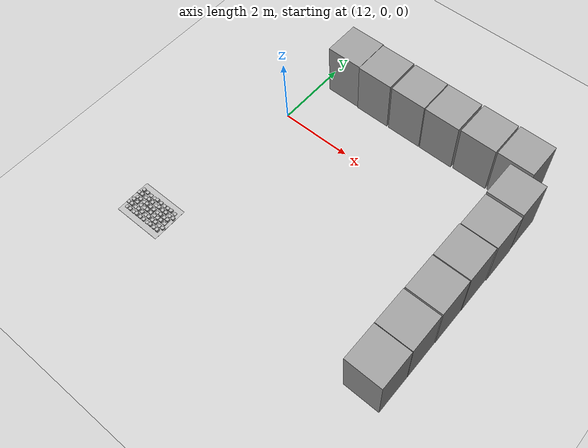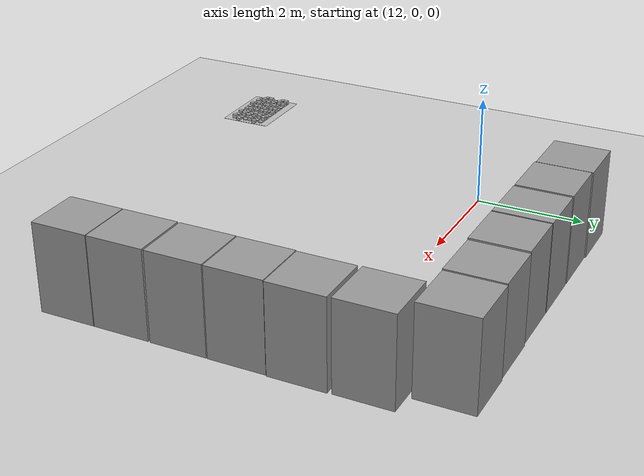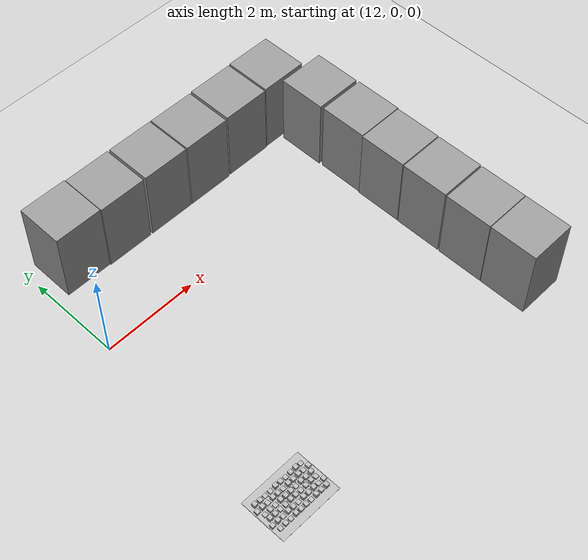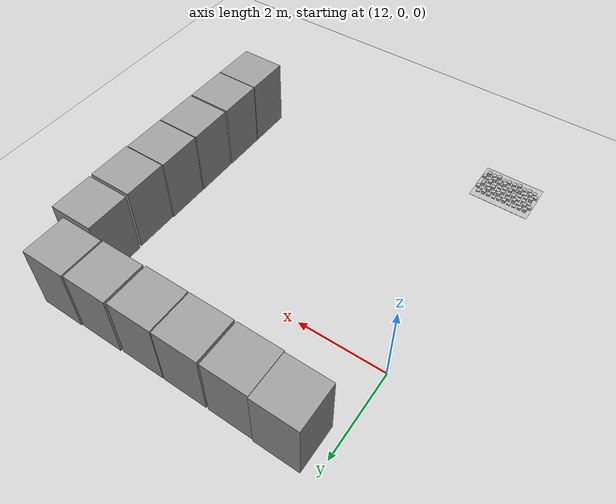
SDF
<sdf version="1.6">
 <world name="default">
  <model name="ground_plane">
   <static>1</static>
   <link name="link">
    <collision name="collision">
     <geometry><plane><normal>0 0 1</normal><size>100 100</size></plane></geometry>
     <surface><friction><ode><mu>100</mu><mu2>50</mu2></ode></friction></surface>
    </collision>
    <visual name="visual">
     <cast_shadows>0</cast_shadows>
     <geometry><plane><normal>0 0 1</normal><size>100 100</size></plane></geometry>
     <material>
      <script><uri>file://media/materials/scripts/gazebo.material</uri><name>Gazebo/Grey</name></script>
     </material>
    </visual>
   </link>
  </model>
  <model name="frc2016_roughterrain_clone_2_clone_clone_1">
   <static>1</static>
   <link name="link">
    <visual name="platform">
     <pose>0 0 0.08269 0 -0 0</pose>
     <geometry><box><size>1.27 0.5969 0.003175</size></box></geometry>
    </visual>
    <collision name="platform">
     <pose>0 0 0.08269 0 -0 0</pose>
     <geometry><box><size>1.27 0.5969 0.003175</size></box></geometry>
    </collision>
    <visual name="row1_block1_sm">
     <pose>0.51435 0.1143 0.09698 0 -0 0</pose>
     <geometry><box><size>0.0762 0.0762 0.0254</size></box></geometry>
    </visual>
    <collision name="row1_block1_sm">
     <pose>0.51435 0.1143 0.09698 0 -0 0</pose>
     <geometry><box><size>0.0762 0.0762 0.0254</size></box></geometry>
    </collision>
    <visual name="row1_block2_lg">
     <pose>0.40005 0.1143 0.12238 0 -0 0</pose>
     <geometry><box><size>0.0762 0.0762 0.0762</size></box></geometry>
    </visual>
    <collision name="row1_block2_lg">
     <pose>0.40005 0.1143 0.12238 0 -0 0</pose>
     <geometry><box><size>0.0762 0.0762 0.0762</size></box></geometry>
    </collision>
    <visual name="row1_block3_md">
     <pose>0.28575 0.1143 0.10968 0 -0 0</pose>
     <geometry><box><size>0.0762 0.0762 0.0508</size></box></geometry>
    </visual>
    <collision name="row1_block3_md">
     <pose>0.28575 0.1143 0.10968 0 -0 0</pose>
     <geometry><box><size>0.0762 0.0762 0.0508</size></box></geometry>
    </collision>
    <visual name="row1_block4_sm">
     <pose>0.17145 0.1143 0.09698 0 -0 0</pose>
     <geometry><box><size>0.0762 0.0762 0.0254</size></box></geometry>
    </visual>
    <collision name="row1_block4_sm">
     <pose>0.17145 0.1143 0.09698 0 -0 0</pose>
     <geometry><box><size>0.0762 0.0762 0.0254</size></box></geometry>
    </collision>
    <visual name="row1_block5_md">
     <pose>0.05715 0.1143 0.10968 0 -0 0</pose>
     <geometry><box><size>0.0762 0.0762 0.0508</size></box></geometry>
    </visual>
    <collision name="row1_block5_md">
     <pose>0.05715 0.1143 0.10968 0 -0 0</pose>
     <geometry><box><size>0.0762 0.0762 0.0508</size></box></geometry>
    </collision>
    <visual name="row1_block6_lg">
     <pose>-0.05715 0.1143 0.12238 0 -0 0</pose>
     <geometry><box><size>0.0762 0.0762 0.0762</size></box></geometry>
    </visual>
    <collision name="row1_block6_lg">
     <pose>-0.05715 0.1143 0.12238 0 -0 0</pose>
     <geometry><box><size>0.0762 0.0762 0.0762</size></box></geometry>
    </collision>
    <visual name="row1_block7_sm">
     <pose>-0.17145 0.1143 0.09698 0 -0 0</pose>
     <geometry><box><size>0.0762 0.0762 0.0254</size></box></geometry>
    </visual>
    <collision name="row1_block7_sm">
     <pose>-0.17145 0.1143 0.09698 0 -0 0</pose>
     <geometry><box><size>0.0762 0.0762 0.0254</size></box></geometry>
    </collision>
    <visual name="row1_block8_sm">
     <pose>-0.28575 0.1143 0.09698 0 -0 0</pose>
     <geometry><box><size>0.0762 0.0762 0.0254</size></box></geometry>
    </visual>
    <collision name="row1_block8_sm">
     <pose>-0.28575 0.1143 0.09698 0 -0 0</pose>
     <geometry><box><size>0.0762 0.0762 0.0254</size></box></geometry>
    </collision>
    <visual name="row1_block9_md">
     <pose>-0.40005 0.1143 0.10968 0 -0 0</pose>
     <geometry><box><size>0.0762 0.0762 0.0508</size></box></geometry>
    </visual>
    <collision name="row1_block9_md">
     <pose>-0.40005 0.1143 0.10968 0 -0 0</pose>
     <geometry><box><size>0.0762 0.0762 0.0508</size></box></geometry>
    </collision>
    <visual name="row1_block10_lg">
     <pose>-0.51435 0.1143 0.12238 0 -0 0</pose>
     <geometry><box><size>0.0762 0.0762 0.0762</size></box></geometry>
    </visual>
    <collision name="row1_block10_lg">
     <pose>-0.51435 0.1143 0.12238 0 -0 0</pose>
     <geometry><box><size>0.0762 0.0762 0.0762</size></box></geometry>
    </collision>
    <visual name="row2_block1_md">
     <pose>0.5715 0 0.10968 0 -0 0</pose>
     <geometry><box><size>0.0762 0.0762 0.0508</size></box></geometry>
    </visual>
    <collision name="row2_block1_md">
     <pose>0.5715 0 0.10968 0 -0 0</pose>
     <geometry><box><size>0.0762 0.0762 0.0508</size></box></geometry>
    </collision>
    <visual name="row2_block2_sm">
     <pose>0.4572 0 0.09698 0 -0 0</pose>
     <geometry><box><size>0.0762 0.0762 0.0254</size></box></geometry>
    </visual>
    <collision name="row2_block2_sm">
     <pose>0.4572 0 0.09698 0 -0 0</pose>
     <geometry><box><size>0.0762 0.0762 0.0254</size></box></geometry>
    </collision>
    <visual name="row2_block3_lg">
     <pose>0.3429 0 0.12238 0 -0 0</pose>
     <geometry><box><size>0.0762 0.0762 0.0762</size></box></geometry>
    </visual>
    <collision name="row2_block3_lg">
     <pose>0.3429 0 0.12238 0 -0 0</pose>
     <geometry><box><size>0.0762 0.0762 0.0762</size></box></geometry>
    </collision>
    <visual name="row2_block4_md">
     <pose>0.2286 0 0.10968 0 -0 0</pose>
     <geometry><box><size>0.0762 0.0762 0.0508</size></box></geometry>
    </visual>
    <collision name="row2_block4_md">
     <pose>0.2286 0 0.10968 0 -0 0</pose>
     <geometry><box><size>0.0762 0.0762 0.0508</size></box></geometry>
    </collision>
    <visual name="row2_block5_lg">
     <pose>0.1143 0 0.12238 0 -0 0</pose>
     <geometry><box><size>0.0762 0.0762 0.0762</size></box></geometry>
    </visual>
    <collision name="row2_block5_lg">
     <pose>0.1143 0 0.12238 0 -0 0</pose>
     <geometry><box><size>0.0762 0.0762 0.0762</size></box></geometry>
    </collision>
    <visual name="row2_block6_sm">
     <pose>0 0 0.09698 0 -0 0</pose>
     <geometry><box><size>0.0762 0.0762 0.0254</size></box></geometry>
    </visual>
    <collision name="row2_block6_sm">
     <pose>0 0 0.09698 0 -0 0</pose>
     <geometry><box><size>0.0762 0.0762 0.0254</size></box></geometry>
    </collision>
    <visual name="row2_block7_md">
     <pose>-0.1143 0 0.10968 0 -0 0</pose>
     <geometry><box><size>0.0762 0.0762 0.0508</size></box></geometry>
    </visual>
    <collision name="row2_block7_md">
     <pose>-0.1143 0 0.10968 0 -0 0</pose>
     <geometry><box><size>0.0762 0.0762 0.0508</size></box></geometry>
    </collision>
    <visual name="row2_block8_lg">
     <pose>-0.2286 0 0.12238 0 -0 0</pose>
     <geometry><box><size>0.0762 0.0762 0.0762</size></box></geometry>
    </visual>
    <collision name="row2_block8_lg">
     <pose>-0.2286 0 0.12238 0 -0 0</pose>
     <geometry><box><size>0.0762 0.0762 0.0762</size></box></geometry>
    </collision>
    <visual name="row2_block9_sm">
     <pose>-0.3429 0 0.09698 0 -0 0</pose>
     <geometry><box><size>0.0762 0.0762 0.0254</size></box></geometry>
    </visual>
    <collision name="row2_block9_sm">
     <pose>-0.3429 0 0.09698 0 -0 0</pose>
     <geometry><box><size>0.0762 0.0762 0.0254</size></box></geometry>
    </collision>
    <visual name="row2_block10_lg">
     <pose>-0.4572 0 0.12238 0 -0 0</pose>
     <geometry><box><size>0.0762 0.0762 0.0762</size></box></geometry>
    </visual>
    <collision name="row2_block10_lg">
     <pose>-0.4572 0 0.12238 0 -0 0</pose>
     <geometry><box><size>0.0762 0.0762 0.0762</size></box></geometry>
    </collision>
    <visual name="row2_block11_md">
     <pose>-0.5715 0 0.10968 0 -0 0</pose>
     <geometry><box><size>0.0762 0.0762 0.0508</size></box></geometry>
    </visual>
    <collision name="row2_block11_md">
     <pose>-0.5715 0 0.10968 0 -0 0</pose>
     <geometry><box><size>0.0762 0.0762 0.0508</size></box></geometry>
    </collision>
    <visual name="row3_block1_lg">
     <pose>0.51435 -0.1143 0.12238 0 -0 0</pose>
     <geometry><box><size>0.0762 0.0762 0.0762</size></box></geometry>
    </visual>
    <collision name="row3_block1_lg">
     <pose>0.51435 -0.1143 0.12238 0 -0 0</pose>
     <geometry><box><size>0.0762 0.0762 0.0762</size></box></geometry>
    </collision>
    <visual name="row3_block2_md">
     <pose>0.40005 -0.1143 0.10968 0 -0 0</pose>
     <geometry><box><size>0.0762 0.0762 0.0508</size></box></geometry>
    </visual>
    <collision name="row3_block2_md">
     <pose>0.40005 -0.1143 0.10968 0 -0 0</pose>
     <geometry><box><size>0.0762 0.0762 0.0508</size></box></geometry>
    </collision>
    <visual name="row3_block3_lg">
     <pose>0.28575 -0.1143 0.12238 0 -0 0</pose>
     <geometry><box><size>0.0762 0.0762 0.0762</size></box></geometry>
    </visual>
    <collision name="row3_block3_lg">
     <pose>0.28575 -0.1143 0.12238 0 -0 0</pose>
     <geometry><box><size>0.0762 0.0762 0.0762</size></box></geometry>
    </collision>
    <visual name="row3_block4_sm">
     <pose>0.17145 -0.1143 0.09698 0 -0 0</pose>
     <geometry><box><size>0.0762 0.0762 0.0254</size></box></geometry>
    </visual>
    <collision name="row3_block4_sm">
     <pose>0.17145 -0.1143 0.09698 0 -0 0</pose>
     <geometry><box><size>0.0762 0.0762 0.0254</size></box></geometry>
    </collision>
    <visual name="row3_block5_md">
     <pose>0.05715 -0.1143 0.10968 0 -0 0</pose>
     <geometry><box><size>0.0762 0.0762 0.0508</size></box></geometry>
    </visual>
    <collision name="row3_block5_md">
     <pose>0.05715 -0.1143 0.10968 0 -0 0</pose>
     <geometry><box><size>0.0762 0.0762 0.0508</size></box></geometry>
    </collision>
    <visual name="row3_block6_md">
     <pose>-0.05715 -0.1143 0.10968 0 -0 0</pose>
     <geometry><box><size>0.0762 0.0762 0.0508</size></box></geometry>
    </visual>
    <collision name="row3_block6_md">
     <pose>-0.05715 -0.1143 0.10968 0 -0 0</pose>
     <geometry><box><size>0.0762 0.0762 0.0508</size></box></geometry>
    </collision>
    <visual name="row3_block7_lg">
     <pose>-0.17145 -0.1143 0.12238 0 -0 0</pose>
     <geometry><box><size>0.0762 0.0762 0.0762</size></box></geometry>
    </visual>
    <collision name="row3_block7_lg">
     <pose>-0.17145 -0.1143 0.12238 0 -0 0</pose>
     <geometry><box><size>0.0762 0.0762 0.0762</size></box></geometry>
    </collision>
    <visual name="row3_block8_sm">
     <pose>-0.28575 -0.1143 0.09698 0 -0 0</pose>
     <geometry><box><size>0.0762 0.0762 0.0254</size></box></geometry>
    </visual>
    <collision name="row3_block8_sm">
     <pose>-0.28575 -0.1143 0.09698 0 -0 0</pose>
     <geometry><box><size>0.0762 0.0762 0.0254</size></box></geometry>
    </collision>
    <visual name="row3_block9_md">
     <pose>-0.40005 -0.1143 0.10968 0 -0 0</pose>
     <geometry><box><size>0.0762 0.0762 0.0508</size></box></geometry>
    </visual>
    <collision name="row3_block9_md">
     <pose>-0.40005 -0.1143 0.10968 0 -0 0</pose>
     <geometry><box><size>0.0762 0.0762 0.0508</size></box></geometry>
    </collision>
    <visual name="row3_block10_sm">
     <pose>-0.51435 -0.1143 0.09698 0 -0 0</pose>
     <geometry><box><size>0.0762 0.0762 0.0254</size></box></geometry>
    </visual>
    <collision name="row3_block10_sm">
     <pose>-0.51435 -0.1143 0.09698 0 -0 0</pose>
     <geometry><box><size>0.0762 0.0762 0.0254</size></box></geometry>
    </collision>
   </link>
   <pose>11.8816 -4.48704 0.826533 0 -0 0</pose>
  </model>
  <model name="frc2016_roughterrain_clone_2_clone_clone_2">
   <static>1</static>
   <link name="link">
    <visual name="platform">
     <pose>0 0 0.08269 0 -0 0</pose>
     <geometry><box><size>1.27 0.5969 0.003175</size></box></geometry>
    </visual>
    <collision name="platform">
     <pose>0 0 0.08269 0 -0 0</pose>
     <geometry><box><size>1.27 0.5969 0.003175</size></box></geometry>
    </collision>
    <visual name="row1_block1_sm">
     <pose>0.51435 0.1143 0.09698 0 -0 0</pose>
     <geometry><box><size>0.0762 0.0762 0.0254</size></box></geometry>
    </visual>
    <collision name="row1_block1_sm">
     <pose>0.51435 0.1143 0.09698 0 -0 0</pose>
     <geometry><box><size>0.0762 0.0762 0.0254</size></box></geometry>
    </collision>
    <visual name="row1_block2_lg">
     <pose>0.40005 0.1143 0.12238 0 -0 0</pose>
     <geometry><box><size>0.0762 0.0762 0.0762</size></box></geometry>
    </visual>
    <collision name="row1_block2_lg">
     <pose>0.40005 0.1143 0.12238 0 -0 0</pose>
     <geometry><box><size>0.0762 0.0762 0.0762</size></box></geometry>
    </collision>
    <visual name="row1_block3_md">
     <pose>0.28575 0.1143 0.10968 0 -0 0</pose>
     <geometry><box><size>0.0762 0.0762 0.0508</size></box></geometry>
    </visual>
    <collision name="row1_block3_md">
     <pose>0.28575 0.1143 0.10968 0 -0 0</pose>
     <geometry><box><size>0.0762 0.0762 0.0508</size></box></geometry>
    </collision>
    <visual name="row1_block4_sm">
     <pose>0.17145 0.1143 0.09698 0 -0 0</pose>
     <geometry><box><size>0.0762 0.0762 0.0254</size></box></geometry>
    </visual>
    <collision name="row1_block4_sm">
     <pose>0.17145 0.1143 0.09698 0 -0 0</pose>
     <geometry><box><size>0.0762 0.0762 0.0254</size></box></geometry>
    </collision>
    <visual name="row1_block5_md">
     <pose>0.05715 0.1143 0.10968 0 -0 0</pose>
     <geometry><box><size>0.0762 0.0762 0.0508</size></box></geometry>
    </visual>
    <collision name="row1_block5_md">
     <pose>0.05715 0.1143 0.10968 0 -0 0</pose>
     <geometry><box><size>0.0762 0.0762 0.0508</size></box></geometry>
    </collision>
    <visual name="row1_block6_lg">
     <pose>-0.05715 0.1143 0.12238 0 -0 0</pose>
     <geometry><box><size>0.0762 0.0762 0.0762</size></box></geometry>
    </visual>
    <collision name="row1_block6_lg">
     <pose>-0.05715 0.1143 0.12238 0 -0 0</pose>
     <geometry><box><size>0.0762 0.0762 0.0762</size></box></geometry>
    </collision>
    <visual name="row1_block7_sm">
     <pose>-0.17145 0.1143 0.09698 0 -0 0</pose>
     <geometry><box><size>0.0762 0.0762 0.0254</size></box></geometry>
    </visual>
    <collision name="row1_block7_sm">
     <pose>-0.17145 0.1143 0.09698 0 -0 0</pose>
     <geometry><box><size>0.0762 0.0762 0.0254</size></box></geometry>
    </collision>
    <visual name="row1_block8_sm">
     <pose>-0.28575 0.1143 0.09698 0 -0 0</pose>
     <geometry><box><size>0.0762 0.0762 0.0254</size></box></geometry>
    </visual>
    <collision name="row1_block8_sm">
     <pose>-0.28575 0.1143 0.09698 0 -0 0</pose>
     <geometry><box><size>0.0762 0.0762 0.0254</size></box></geometry>
    </collision>
    <visual name="row1_block9_md">
     <pose>-0.40005 0.1143 0.10968 0 -0 0</pose>
     <geometry><box><size>0.0762 0.0762 0.0508</size></box></geometry>
    </visual>
    <collision name="row1_block9_md">
     <pose>-0.40005 0.1143 0.10968 0 -0 0</pose>
     <geometry><box><size>0.0762 0.0762 0.0508</size></box></geometry>
    </collision>
    <visual name="row1_block10_lg">
     <pose>-0.51435 0.1143 0.12238 0 -0 0</pose>
     <geometry><box><size>0.0762 0.0762 0.0762</size></box></geometry>
    </visual>
    <collision name="row1_block10_lg">
     <pose>-0.51435 0.1143 0.12238 0 -0 0</pose>
     <geometry><box><size>0.0762 0.0762 0.0762</size></box></geometry>
    </collision>
    <visual name="row2_block1_md">
     <pose>0.5715 0 0.10968 0 -0 0</pose>
     <geometry><box><size>0.0762 0.0762 0.0508</size></box></geometry>
    </visual>
    <collision name="row2_block1_md">
     <pose>0.5715 0 0.10968 0 -0 0</pose>
     <geometry><box><size>0.0762 0.0762 0.0508</size></box></geometry>
    </collision>
    <visual name="row2_block2_sm">
     <pose>0.4572 0 0.09698 0 -0 0</pose>
     <geometry><box><size>0.0762 0.0762 0.0254</size></box></geometry>
    </visual>
    <collision name="row2_block2_sm">
     <pose>0.4572 0 0.09698 0 -0 0</pose>
     <geometry><box><size>0.0762 0.0762 0.0254</size></box></geometry>
    </collision>
    <visual name="row2_block3_lg">
     <pose>0.3429 0 0.12238 0 -0 0</pose>
     <geometry><box><size>0.0762 0.0762 0.0762</size></box></geometry>
    </visual>
    <collision name="row2_block3_lg">
     <pose>0.3429 0 0.12238 0 -0 0</pose>
     <geometry><box><size>0.0762 0.0762 0.0762</size></box></geometry>
    </collision>
    <visual name="row2_block4_md">
     <pose>0.2286 0 0.10968 0 -0 0</pose>
     <geometry><box><size>0.0762 0.0762 0.0508</size></box></geometry>
    </visual>
    <collision name="row2_block4_md">
     <pose>0.2286 0 0.10968 0 -0 0</pose>
     <geometry><box><size>0.0762 0.0762 0.0508</size></box></geometry>
    </collision>
    <visual name="row2_block5_lg">
     <pose>0.1143 0 0.12238 0 -0 0</pose>
     <geometry><box><size>0.0762 0.0762 0.0762</size></box></geometry>
    </visual>
    <collision name="row2_block5_lg">
     <pose>0.1143 0 0.12238 0 -0 0</pose>
     <geometry><box><size>0.0762 0.0762 0.0762</size></box></geometry>
    </collision>
    <visual name="row2_block6_sm">
     <pose>0 0 0.09698 0 -0 0</pose>
     <geometry><box><size>0.0762 0.0762 0.0254</size></box></geometry>
    </visual>
    <collision name="row2_block6_sm">
     <pose>0 0 0.09698 0 -0 0</pose>
     <geometry><box><size>0.0762 0.0762 0.0254</size></box></geometry>
    </collision>
    <visual name="row2_block7_md">
     <pose>-0.1143 0 0.10968 0 -0 0</pose>
     <geometry><box><size>0.0762 0.0762 0.0508</size></box></geometry>
    </visual>
    <collision name="row2_block7_md">
     <pose>-0.1143 0 0.10968 0 -0 0</pose>
     <geometry><box><size>0.0762 0.0762 0.0508</size></box></geometry>
    </collision>
    <visual name="row2_block8_lg">
     <pose>-0.2286 0 0.12238 0 -0 0</pose>
     <geometry><box><size>0.0762 0.0762 0.0762</size></box></geometry>
    </visual>
    <collision name="row2_block8_lg">
     <pose>-0.2286 0 0.12238 0 -0 0</pose>
     <geometry><box><size>0.0762 0.0762 0.0762</size></box></geometry>
    </collision>
    <visual name="row2_block9_sm">
     <pose>-0.3429 0 0.09698 0 -0 0</pose>
     <geometry><box><size>0.0762 0.0762 0.0254</size></box></geometry>
    </visual>
    <collision name="row2_block9_sm">
     <pose>-0.3429 0 0.09698 0 -0 0</pose>
     <geometry><box><size>0.0762 0.0762 0.0254</size></box></geometry>
    </collision>
    <visual name="row2_block10_lg">
     <pose>-0.4572 0 0.12238 0 -0 0</pose>
     <geometry><box><size>0.0762 0.0762 0.0762</size></box></geometry>
    </visual>
    <collision name="row2_block10_lg">
     <pose>-0.4572 0 0.12238 0 -0 0</pose>
     <geometry><box><size>0.0762 0.0762 0.0762</size></box></geometry>
    </collision>
    <visual name="row2_block11_md">
     <pose>-0.5715 0 0.10968 0 -0 0</pose>
     <geometry><box><size>0.0762 0.0762 0.0508</size></box></geometry>
    </visual>
    <collision name="row2_block11_md">
     <pose>-0.5715 0 0.10968 0 -0 0</pose>
     <geometry><box><size>0.0762 0.0762 0.0508</size></box></geometry>
    </collision>
    <visual name="row3_block1_lg">
     <pose>0.51435 -0.1143 0.12238 0 -0 0</pose>
     <geometry><box><size>0.0762 0.0762 0.0762</size></box></geometry>
    </visual>
    <collision name="row3_block1_lg">
     <pose>0.51435 -0.1143 0.12238 0 -0 0</pose>
     <geometry><box><size>0.0762 0.0762 0.0762</size></box></geometry>
    </collision>
    <visual name="row3_block2_md">
     <pose>0.40005 -0.1143 0.10968 0 -0 0</pose>
     <geometry><box><size>0.0762 0.0762 0.0508</size></box></geometry>
    </visual>
    <collision name="row3_block2_md">
     <pose>0.40005 -0.1143 0.10968 0 -0 0</pose>
     <geometry><box><size>0.0762 0.0762 0.0508</size></box></geometry>
    </collision>
    <visual name="row3_block3_lg">
     <pose>0.28575 -0.1143 0.12238 0 -0 0</pose>
     <geometry><box><size>0.0762 0.0762 0.0762</size></box></geometry>
    </visual>
    <collision name="row3_block3_lg">
     <pose>0.28575 -0.1143 0.12238 0 -0 0</pose>
     <geometry><box><size>0.0762 0.0762 0.0762</size></box></geometry>
    </collision>
    <visual name="row3_block4_sm">
     <pose>0.17145 -0.1143 0.09698 0 -0 0</pose>
     <geometry><box><size>0.0762 0.0762 0.0254</size></box></geometry>
    </visual>
    <collision name="row3_block4_sm">
     <pose>0.17145 -0.1143 0.09698 0 -0 0</pose>
     <geometry><box><size>0.0762 0.0762 0.0254</size></box></geometry>
    </collision>
    <visual name="row3_block5_md">
     <pose>0.05715 -0.1143 0.10968 0 -0 0</pose>
     <geometry><box><size>0.0762 0.0762 0.0508</size></box></geometry>
    </visual>
    <collision name="row3_block5_md">
     <pose>0.05715 -0.1143 0.10968 0 -0 0</pose>
     <geometry><box><size>0.0762 0.0762 0.0508</size></box></geometry>
    </collision>
    <visual name="row3_block6_md">
     <pose>-0.05715 -0.1143 0.10968 0 -0 0</pose>
     <geometry><box><size>0.0762 0.0762 0.0508</size></box></geometry>
    </visual>
    <collision name="row3_block6_md">
     <pose>-0.05715 -0.1143 0.10968 0 -0 0</pose>
     <geometry><box><size>0.0762 0.0762 0.0508</size></box></geometry>
    </collision>
    <visual name="row3_block7_lg">
     <pose>-0.17145 -0.1143 0.12238 0 -0 0</pose>
     <geometry><box><size>0.0762 0.0762 0.0762</size></box></geometry>
    </visual>
    <collision name="row3_block7_lg">
     <pose>-0.17145 -0.1143 0.12238 0 -0 0</pose>
     <geometry><box><size>0.0762 0.0762 0.0762</size></box></geometry>
    </collision>
    <visual name="row3_block8_sm">
     <pose>-0.28575 -0.1143 0.09698 0 -0 0</pose>
     <geometry><box><size>0.0762 0.0762 0.0254</size></box></geometry>
    </visual>
    <collision name="row3_block8_sm">
     <pose>-0.28575 -0.1143 0.09698 0 -0 0</pose>
     <geometry><box><size>0.0762 0.0762 0.0254</size></box></geometry>
    </collision>
    <visual name="row3_block9_md">
     <pose>-0.40005 -0.1143 0.10968 0 -0 0</pose>
     <geometry><box><size>0.0762 0.0762 0.0508</size></box></geometry>
    </visual>
    <collision name="row3_block9_md">
     <pose>-0.40005 -0.1143 0.10968 0 -0 0</pose>
     <geometry><box><size>0.0762 0.0762 0.0508</size></box></geometry>
    </collision>
    <visual name="row3_block10_sm">
     <pose>-0.51435 -0.1143 0.09698 0 -0 0</pose>
     <geometry><box><size>0.0762 0.0762 0.0254</size></box></geometry>
    </visual>
    <collision name="row3_block10_sm">
     <pose>-0.51435 -0.1143 0.09698 0 -0 0</pose>
     <geometry><box><size>0.0762 0.0762 0.0254</size></box></geometry>
    </collision>
   </link>
   <pose>11.8855 -4.82098 0.826533 0 -0 0</pose>
  </model>
  <model name="unit_box_clone_10_clone_0">
   <pose>12.7659 1.9402 0.799366 3e-06 -4e-06 -6e-06</pose>
   <link name="link">
    <inertial>
     <mass>1</mass>
     <inertia>
      <ixx>0.166667</ixx>
      <ixy>0</ixy>
      <ixz>0</ixz>
      <iyy>0.166667</iyy>
      <iyz>0</iyz>
      <izz>0.166667</izz>
     </inertia>
    </inertial>
    <collision name="collision"><geometry><box><size>1 1 1.59874</size></box></geometry></collision>
    <visual name="visual">
     <geometry><box><size>1 1 1.59874</size></box></geometry>
     <material>
      <script><name>Gazebo/Grey</name><uri>file://media/materials/scripts/gazebo.material</uri></script>
     </material>
    </visual>
   </link>
  </model>
  <model name="unit_box_clone_10_clone_1">
   <pose>13.7732 1.9196 0.799366 3e-06 -4e-06 -6e-06</pose>
   <link name="link">
    <inertial>
     <mass>1</mass>
     <inertia>
      <ixx>0.166667</ixx>
      <ixy>0</ixy>
      <ixz>0</ixz>
      <iyy>0.166667</iyy>
      <iyz>0</iyz>
      <izz>0.166667</izz>
     </inertia>
    </inertial>
    <collision name="collision"><geometry><box><size>1 1 1.59874</size></box></geometry></collision>
    <visual name="visual">
     <geometry><box><size>1 1 1.59874</size></box></geometry>
     <material>
      <script><name>Gazebo/Grey</name><uri>file://media/materials/scripts/gazebo.material</uri></script>
     </material>
    </visual>
   </link>
  </model>
  <model name="unit_box_clone_10_clone_2">
   <pose>14.8224 1.9181 0.799366 3e-06 -4e-06 -6e-06</pose>
   <link name="link">
    <inertial>
     <mass>1</mass>
     <inertia>
      <ixx>0.166667</ixx>
      <ixy>0</ixy>
      <ixz>0</ixz>
      <iyy>0.166667</iyy>
      <iyz>0</iyz>
      <izz>0.166667</izz>
     </inertia>
    </inertial>
    <collision name="collision"><geometry><box><size>1 1 1.59874</size></box></geometry></collision>
    <visual name="visual">
     <geometry><box><size>1 1 1.59874</size></box></geometry>
     <material>
      <script><name>Gazebo/Grey</name><uri>file://media/materials/scripts/gazebo.material</uri></script>
     </material>
    </visual>
   </link>
  </model>
  <model name="unit_box_clone_10_clone_3">
   <pose>15.8496 1.91766 0.79937 0 -0 1.6e-05</pose>
   <link name="link">
    <inertial>
     <mass>1</mass>
     <inertia>
      <ixx>0.166667</ixx>
      <ixy>0</ixy>
      <ixz>0</ixz>
      <iyy>0.166667</iyy>
      <iyz>0</iyz>
      <izz>0.166667</izz>
     </inertia>
    </inertial>
    <collision name="collision"><geometry><box><size>1 1 1.59874</size></box></geometry></collision>
    <visual name="visual">
     <geometry><box><size>1 1 1.59874</size></box></geometry>
     <material>
      <script><name>Gazebo/Grey</name><uri>file://media/materials/scripts/gazebo.material</uri></script>
     </material>
    </visual>
   </link>
  </model>
  <model name="unit_box_clone_10_clone_4">
   <pose>17.9382 1.95371 0.79937 -0 -0 -0.000153</pose>
   <link name="link">
    <inertial>
     <mass>1</mass>
     <inertia>
      <ixx>0.166667</ixx>
      <ixy>0</ixy>
      <ixz>0</ixz>
      <iyy>0.166667</iyy>
      <iyz>0</iyz>
      <izz>0.166667</izz>
     </inertia>
    </inertial>
    <collision name="collision"><geometry><box><size>1 1 1.59874</size></box></geometry></collision>
    <visual name="visual">
     <geometry><box><size>1 1 1.59874</size></box></geometry>
     <material>
      <script><name>Gazebo/Grey</name><uri>file://media/materials/scripts/gazebo.material</uri></script>
     </material>
    </visual>
   </link>
  </model>
  <model name="unit_box_clone_10_clone_5">
   <pose>18.3417 0.879369 0.79937 0 0 -0.000148</pose>
   <link name="link">
    <inertial>
     <mass>1</mass>
     <inertia>
      <ixx>0.166667</ixx>
      <ixy>0</ixy>
      <ixz>0</ixz>
      <iyy>0.166667</iyy>
      <iyz>0</iyz>
      <izz>0.166667</izz>
     </inertia>
    </inertial>
    <collision name="collision"><geometry><box><size>1 1 1.59874</size></box></geometry></collision>
    <visual name="visual">
     <geometry><box><size>1 1 1.59874</size></box></geometry>
     <material>
      <script><name>Gazebo/Grey</name><uri>file://media/materials/scripts/gazebo.material</uri></script>
     </material>
    </visual>
   </link>
  </model>
  <model name="unit_box_clone_10_clone_6">
   <pose>18.3546 -0.184503 0.79937 0 0 -0.000148</pose>
   <link name="link">
    <inertial>
     <mass>1</mass>
     <inertia>
      <ixx>0.166667</ixx>
      <ixy>0</ixy>
      <ixz>0</ixz>
      <iyy>0.166667</iyy>
      <iyz>0</iyz>
      <izz>0.166667</izz>
     </inertia>
    </inertial>
    <collision name="collision"><geometry><box><size>1 1 1.59874</size></box></geometry></collision>
    <visual name="visual">
     <geometry><box><size>1 1 1.59874</size></box></geometry>
     <material>
      <script><name>Gazebo/Grey</name><uri>file://media/materials/scripts/gazebo.material</uri></script>
     </material>
    </visual>
   </link>
  </model>
  <model name="unit_box_clone_10_clone_7">
   <pose>18.3361 -1.20062 0.79937 0 0 -0.000148</pose>
   <link name="link">
    <inertial>
     <mass>1</mass>
     <inertia>
      <ixx>0.166667</ixx>
      <ixy>0</ixy>
      <ixz>0</ixz>
      <iyy>0.166667</iyy>
      <iyz>0</iyz>
      <izz>0.166667</izz>
     </inertia>
    </inertial>
    <collision name="collision"><geometry><box><size>1 1 1.59874</size></box></geometry></collision>
    <visual name="visual">
     <geometry><box><size>1 1 1.59874</size></box></geometry>
     <material>
      <script><name>Gazebo/Grey</name><uri>file://media/materials/scripts/gazebo.material</uri></script>
     </material>
    </visual>
   </link>
  </model>
  <model name="unit_box_clone_10_clone_8">
   <pose>18.3316 -2.22309 0.79937 0 0 -0.000148</pose>
   <link name="link">
    <inertial>
     <mass>1</mass>
     <inertia>
      <ixx>0.166667</ixx>
      <ixy>0</ixy>
      <ixz>0</ixz>
      <iyy>0.166667</iyy>
      <iyz>0</iyz>
      <izz>0.166667</izz>
     </inertia>
    </inertial>
    <collision name="collision"><geometry><box><size>1 1 1.59874</size></box></geometry></collision>
    <visual name="visual">
     <geometry><box><size>1 1 1.59874</size></box></geometry>
     <material>
      <script><name>Gazebo/Grey</name><uri>file://media/materials/scripts/gazebo.material</uri></script>
     </material>
    </visual>
   </link>
  </model>
  <model name="unit_box_clone_10_clone_9">
   <pose>18.3253 -3.25963 0.79937 0 0 -0.000148</pose>
   <link name="link">
    <inertial>
     <mass>1</mass>
     <inertia>
      <ixx>0.166667</ixx>
      <ixy>0</ixy>
      <ixz>0</ixz>
      <iyy>0.166667</iyy>
      <iyz>0</iyz>
      <izz>0.166667</izz>
     </inertia>
    </inertial>
    <collision name="collision"><geometry><box><size>1 1 1.59874</size></box></geometry></collision>
    <visual name="visual">
     <geometry><box><size>1 1 1.59874</size></box></geometry>
     <material>
      <script><name>Gazebo/Grey</name><uri>file://media/materials/scripts/gazebo.material</uri></script>
     </material>
    </visual>
   </link>
  </model>
  <model name="unit_box_clone_10_clone_10">
   <pose>18.3246 -4.27329 0.79937 0 0 -0.000148</pose>
   <link name="link">
    <inertial>
     <mass>1</mass>
     <inertia>
      <ixx>0.166667</ixx>
      <ixy>0</ixy>
      <ixz>0</ixz>
      <iyy>0.166667</iyy>
      <iyz>0</iyz>
      <izz>0.166667</izz>
     </inertia>
    </inertial>
    <collision name="collision"><geometry><box><size>1 1 1.59874</size></box></geometry></collision>
    <visual name="visual">
     <geometry><box><size>1 1 1.59874</size></box></geometry>
     <material>
      <script><name>Gazebo/Grey</name><uri>file://media/materials/scripts/gazebo.material</uri></script>
     </material>
    </visual>
   </link>
  </model>
  <model name="unit_box_clone_10_clone_14">
   <pose>16.9008 1.93714 0.79937 0 -0 9e-06</pose>
   <link name="link">
    <inertial>
     <mass>1</mass>
     <inertia>
      <ixx>0.166667</ixx>
      <ixy>0</ixy>
      <ixz>0</ixz>
      <iyy>0.166667</iyy>
      <iyz>0</iyz>
      <izz>0.166667</izz>
     </inertia>
    </inertial>
    <collision name="collision"><geometry><box><size>1 1 1.59874</size></box></geometry></collision>
    <visual name="visual">
     <geometry><box><size>1 1 1.59874</size></box></geometry>
     <material>
      <script><name>Gazebo/Grey</name><uri>file://media/materials/scripts/gazebo.material</uri></script>
     </material>
    </visual>
   </link>
  </model>
 </world>
</sdf>
